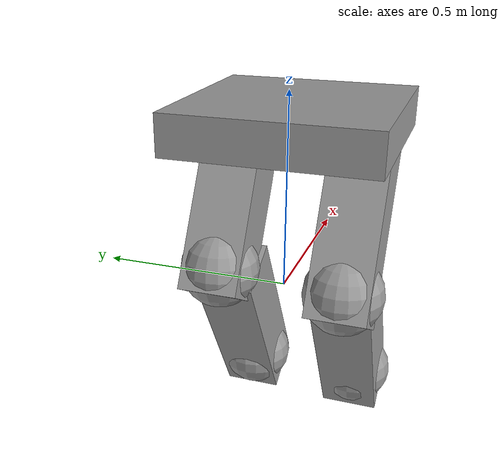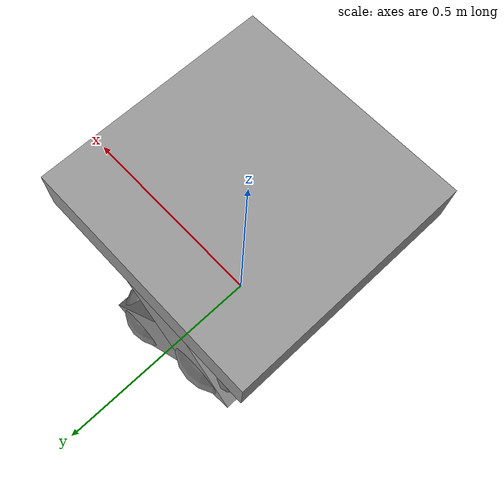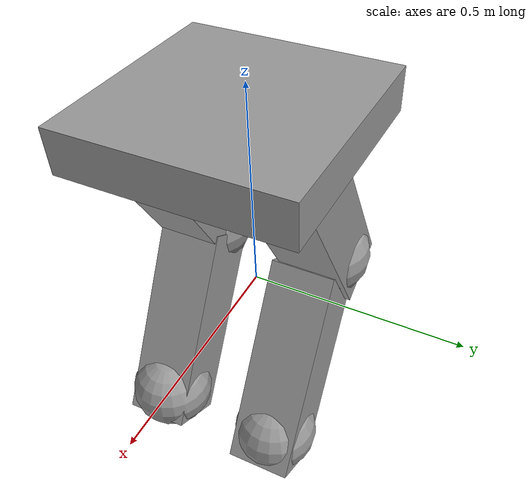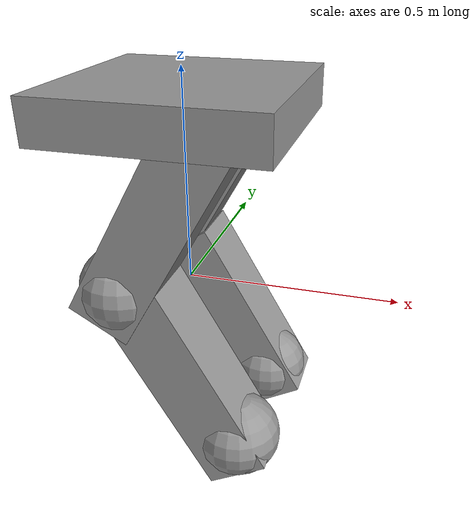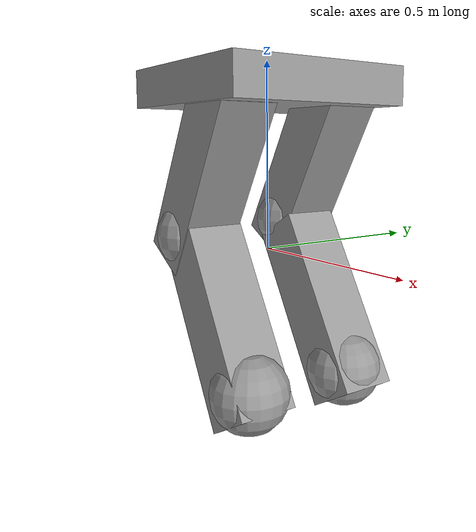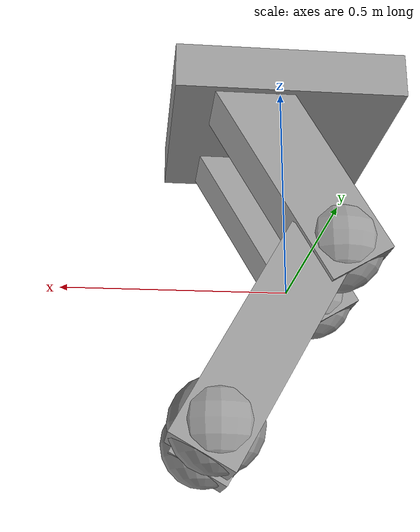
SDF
<?xml version='1.0'?>
<sdf version='1.7'>
  <model name='2LeggedBot'>
    <link name='link_0'>
      <inertial>
        <mass>1</mass>
        <inertia>
          <ixx>0.1</ixx>
          <ixy>0</ixy>
          <ixz>0</ixz>
          <iyy>0.1</iyy>
          <iyz>0</iyz>
          <izz>0.1</izz>
        </inertia>
        <pose>0 0 0 0 -0 0</pose>
      </inertial>
      <pose>0.169699 -0.170527 -0.315363 0 -0 0</pose>
      <gravity>1</gravity>
      <self_collide>0</self_collide>
      <kinematic>0</kinematic>
      <enable_wind>0</enable_wind>
      <visual name='visual'>
        <pose>0 0 0 0 -0 0</pose>
        <geometry>
          <sphere>
            <radius>0.1</radius>
          </sphere>
        </geometry>
        <material>
          <lighting>1</lighting>
          <script>
            <uri>file://media/materials/scripts/gazebo.material</uri>
            <name>Gazebo/Grey</name>
          </script>
          <shader type='pixel'>
            <normal_map>__default__</normal_map>
          </shader>
          <ambient>0.3 0.3 0.3 1</ambient>
          <diffuse>0.7 0.7 0.7 1</diffuse>
          <specular>0.01 0.01 0.01 1</specular>
          <emissive>0 0 0 1</emissive>
        </material>
        <transparency>0</transparency>
        <cast_shadows>1</cast_shadows>
      </visual>
      <visual name='ModelPreview_2::link_0::visual_1'>
        <pose>0 0 0 0 -0 0</pose>
        <geometry>
          <sphere>
            <radius>0.1</radius>
          </sphere>
        </geometry>
        <material>
          <lighting>1</lighting>
          <script>
            <uri>file://media/materials/scripts/gazebo.material</uri>
            <name>Gazebo/Grey</name>
          </script>
          <shader type='pixel'>
            <normal_map>__default__</normal_map>
          </shader>
          <ambient>0.3 0.3 0.3 1</ambient>
          <diffuse>0.7 0.7 0.7 1</diffuse>
          <specular>0.01 0.01 0.01 1</specular>
          <emissive>0 0 0 1</emissive>
        </material>
        <transparency>0</transparency>
        <cast_shadows>1</cast_shadows>
      </visual>
      <collision name='collision'>
        <laser_retro>0</laser_retro>
        <max_contacts>10</max_contacts>
        <pose>0 0 0 0 -0 0</pose>
        <geometry>
          <sphere>
            <radius>0.1</radius>
          </sphere>
        </geometry>
        <surface>
          <friction>
            <ode>
              <mu>1</mu>
              <mu2>1</mu2>
              <fdir1>0 0 0</fdir1>
              <slip1>0</slip1>
              <slip2>0</slip2>
            </ode>
            <torsional>
              <coefficient>1</coefficient>
              <patch_radius>0</patch_radius>
              <surface_radius>0</surface_radius>
              <use_patch_radius>1</use_patch_radius>
              <ode>
                <slip>0</slip>
              </ode>
            </torsional>
          </friction>
          <bounce>
            <restitution_coefficient>0</restitution_coefficient>
            <threshold>1e+06</threshold>
          </bounce>
          <contact>
            <collide_without_contact>0</collide_without_contact>
            <collide_without_contact_bitmask>1</collide_without_contact_bitmask>
            <collide_bitmask>1</collide_bitmask>
            <ode>
              <soft_cfm>0</soft_cfm>
              <soft_erp>0.2</soft_erp>
              <kp>1e+13</kp>
              <kd>1</kd>
              <max_vel>0.01</max_vel>
              <min_depth>0</min_depth>
            </ode>
            <bullet>
              <split_impulse>1</split_impulse>
              <split_impulse_penetration_threshold>-0.01</split_impulse_penetration_threshold>
              <soft_cfm>0</soft_cfm>
              <soft_erp>0.2</soft_erp>
              <kp>1e+13</kp>
              <kd>1</kd>
            </bullet>
          </contact>
        </surface>
      </collision>
    </link>
    <link name='link_0_clone'>
      <inertial>
        <mass>1</mass>
        <inertia>
          <ixx>0.1</ixx>
          <ixy>0</ixy>
          <ixz>0</ixz>
          <iyy>0.1</iyy>
          <iyz>0</iyz>
          <izz>0.1</izz>
        </inertia>
        <pose>0 0 0 0 -0 0</pose>
      </inertial>
      <pose>0.169699 0.129473 -0.315363 0 -0 0</pose>
      <gravity>1</gravity>
      <self_collide>0</self_collide>
      <kinematic>0</kinematic>
      <enable_wind>0</enable_wind>
      <visual name='visual'>
        <pose>0 0 0 0 -0 0</pose>
        <geometry>
          <sphere>
            <radius>0.1</radius>
          </sphere>
        </geometry>
        <material>
          <lighting>1</lighting>
          <script>
            <uri>file://media/materials/scripts/gazebo.material</uri>
            <name>Gazebo/Grey</name>
          </script>
          <shader type='pixel'>
            <normal_map>__default__</normal_map>
          </shader>
          <ambient>0.3 0.3 0.3 1</ambient>
          <diffuse>0.7 0.7 0.7 1</diffuse>
          <specular>0.01 0.01 0.01 1</specular>
          <emissive>0 0 0 1</emissive>
        </material>
        <transparency>0</transparency>
        <cast_shadows>1</cast_shadows>
      </visual>
      <visual name='visual_1'>
        <pose>0 0 0 0 -0 0</pose>
        <geometry>
          <sphere>
            <radius>0.1</radius>
          </sphere>
        </geometry>
        <material>
          <lighting>1</lighting>
          <script>
            <uri>file://media/materials/scripts/gazebo.material</uri>
            <name>Gazebo/Grey</name>
          </script>
          <shader type='pixel'>
            <normal_map>__default__</normal_map>
          </shader>
          <ambient>0.3 0.3 0.3 1</ambient>
          <diffuse>0.7 0.7 0.7 1</diffuse>
          <specular>0.01 0.01 0.01 1</specular>
          <emissive>0 0 0 1</emissive>
        </material>
        <transparency>0</transparency>
        <cast_shadows>1</cast_shadows>
      </visual>
      <collision name='collision'>
        <laser_retro>0</laser_retro>
        <max_contacts>10</max_contacts>
        <pose>0 0 0 0 -0 0</pose>
        <geometry>
          <sphere>
            <radius>0.1</radius>
          </sphere>
        </geometry>
        <surface>
          <friction>
            <ode>
              <mu>1</mu>
              <mu2>1</mu2>
              <fdir1>0 0 0</fdir1>
              <slip1>0</slip1>
              <slip2>0</slip2>
            </ode>
            <torsional>
              <coefficient>1</coefficient>
              <patch_radius>0</patch_radius>
              <surface_radius>0</surface_radius>
              <use_patch_radius>1</use_patch_radius>
              <ode>
                <slip>0</slip>
              </ode>
            </torsional>
          </friction>
          <bounce>
            <restitution_coefficient>0</restitution_coefficient>
            <threshold>1e+06</threshold>
          </bounce>
          <contact>
            <collide_without_contact>0</collide_without_contact>
            <collide_without_contact_bitmask>1</collide_without_contact_bitmask>
            <collide_bitmask>1</collide_bitmask>
            <ode>
              <soft_cfm>0</soft_cfm>
              <soft_erp>0.2</soft_erp>
              <kp>1e+13</kp>
              <kd>1</kd>
              <max_vel>0.01</max_vel>
              <min_depth>0</min_depth>
            </ode>
            <bullet>
              <split_impulse>1</split_impulse>
              <split_impulse_penetration_threshold>-0.01</split_impulse_penetration_threshold>
              <soft_cfm>0</soft_cfm>
              <soft_erp>0.2</soft_erp>
              <kp>1e+13</kp>
              <kd>1</kd>
            </bullet>
          </contact>
        </surface>
      </collision>
    </link>
    <link name='link_0_clone_0'>
      <inertial>
        <mass>1</mass>
        <inertia>
          <ixx>0.1</ixx>
          <ixy>0</ixy>
          <ixz>0</ixz>
          <iyy>0.1</iyy>
          <iyz>0</iyz>
          <izz>0.1</izz>
        </inertia>
        <pose>0 0 0 0 -0 0</pose>
      </inertial>
      <pose>-0.088021 0.142639 0.064349 0 -0 0</pose>
      <gravity>1</gravity>
      <self_collide>0</self_collide>
      <kinematic>0</kinematic>
      <enable_wind>0</enable_wind>
      <visual name='visual_1'>
        <pose>0 0 0 0 -0 0</pose>
        <geometry>
          <sphere>
            <radius>0.1</radius>
          </sphere>
        </geometry>
        <material>
          <lighting>1</lighting>
          <script>
            <uri>file://media/materials/scripts/gazebo.material</uri>
            <name>Gazebo/Grey</name>
          </script>
          <shader type='pixel'>
            <normal_map>__default__</normal_map>
          </shader>
          <ambient>0.3 0.3 0.3 1</ambient>
          <diffuse>0.7 0.7 0.7 1</diffuse>
          <specular>0.01 0.01 0.01 1</specular>
          <emissive>0 0 0 1</emissive>
        </material>
        <transparency>0</transparency>
        <cast_shadows>1</cast_shadows>
      </visual>
      <visual name='visual'>
        <pose>0 0 0 0 -0 0</pose>
        <geometry>
          <sphere>
            <radius>0.1</radius>
          </sphere>
        </geometry>
        <material>
          <lighting>1</lighting>
          <script>
            <uri>file://media/materials/scripts/gazebo.material</uri>
            <name>Gazebo/Grey</name>
          </script>
          <shader type='pixel'>
            <normal_map>__default__</normal_map>
          </shader>
          <ambient>0.3 0.3 0.3 1</ambient>
          <diffuse>0.7 0.7 0.7 1</diffuse>
          <specular>0.01 0.01 0.01 1</specular>
          <emissive>0 0 0 1</emissive>
        </material>
        <transparency>0</transparency>
        <cast_shadows>1</cast_shadows>
      </visual>
      <collision name='collision'>
        <laser_retro>0</laser_retro>
        <max_contacts>10</max_contacts>
        <pose>0 0 0 0 -0 0</pose>
        <geometry>
          <sphere>
            <radius>0.1</radius>
          </sphere>
        </geometry>
        <surface>
          <friction>
            <ode>
              <mu>1</mu>
              <mu2>1</mu2>
              <fdir1>0 0 0</fdir1>
              <slip1>0</slip1>
              <slip2>0</slip2>
            </ode>
            <torsional>
              <coefficient>1</coefficient>
              <patch_radius>0</patch_radius>
              <surface_radius>0</surface_radius>
              <use_patch_radius>1</use_patch_radius>
              <ode>
                <slip>0</slip>
              </ode>
            </torsional>
          </friction>
          <bounce>
            <restitution_coefficient>0</restitution_coefficient>
            <threshold>1e+06</threshold>
          </bounce>
          <contact>
            <collide_without_contact>0</collide_without_contact>
            <collide_without_contact_bitmask>1</collide_without_contact_bitmask>
            <collide_bitmask>1</collide_bitmask>
            <ode>
              <soft_cfm>0</soft_cfm>
              <soft_erp>0.2</soft_erp>
              <kp>1e+13</kp>
              <kd>1</kd>
              <max_vel>0.01</max_vel>
              <min_depth>0</min_depth>
            </ode>
            <bullet>
              <split_impulse>1</split_impulse>
              <split_impulse_penetration_threshold>-0.01</split_impulse_penetration_threshold>
              <soft_cfm>0</soft_cfm>
              <soft_erp>0.2</soft_erp>
              <kp>1e+13</kp>
              <kd>1</kd>
            </bullet>
          </contact>
        </surface>
      </collision>
    </link>
    <link name='link_0_clone_1'>
      <inertial>
        <mass>1</mass>
        <inertia>
          <ixx>0.1</ixx>
          <ixy>0</ixy>
          <ixz>0</ixz>
          <iyy>0.1</iyy>
          <iyz>0</iyz>
          <izz>0.1</izz>
        </inertia>
        <pose>0 0 0 0 -0 0</pose>
      </inertial>
      <pose>-0.092915 -0.172952 0.04398 0 -0 0</pose>
      <gravity>1</gravity>
      <self_collide>0</self_collide>
      <kinematic>0</kinematic>
      <enable_wind>0</enable_wind>
      <visual name='visual'>
        <pose>0 0 0 0 -0 0</pose>
        <geometry>
          <sphere>
            <radius>0.1</radius>
          </sphere>
        </geometry>
        <material>
          <lighting>1</lighting>
          <script>
            <uri>file://media/materials/scripts/gazebo.material</uri>
            <name>Gazebo/Grey</name>
          </script>
          <shader type='pixel'>
            <normal_map>__default__</normal_map>
          </shader>
          <ambient>0.3 0.3 0.3 1</ambient>
          <diffuse>0.7 0.7 0.7 1</diffuse>
          <specular>0.01 0.01 0.01 1</specular>
          <emissive>0 0 0 1</emissive>
        </material>
        <transparency>0</transparency>
        <cast_shadows>1</cast_shadows>
      </visual>
      <visual name='visual_1'>
        <pose>0 0 0 0 -0 0</pose>
        <geometry>
          <sphere>
            <radius>0.1</radius>
          </sphere>
        </geometry>
        <material>
          <lighting>1</lighting>
          <script>
            <uri>file://media/materials/scripts/gazebo.material</uri>
            <name>Gazebo/Grey</name>
          </script>
          <shader type='pixel'>
            <normal_map>__default__</normal_map>
          </shader>
          <ambient>0.3 0.3 0.3 1</ambient>
          <diffuse>0.7 0.7 0.7 1</diffuse>
          <specular>0.01 0.01 0.01 1</specular>
          <emissive>0 0 0 1</emissive>
        </material>
        <transparency>0</transparency>
        <cast_shadows>1</cast_shadows>
      </visual>
      <collision name='collision'>
        <laser_retro>0</laser_retro>
        <max_contacts>10</max_contacts>
        <pose>0 0 0 0 -0 0</pose>
        <geometry>
          <sphere>
            <radius>0.1</radius>
          </sphere>
        </geometry>
        <surface>
          <friction>
            <ode>
              <mu>1</mu>
              <mu2>1</mu2>
              <fdir1>0 0 0</fdir1>
              <slip1>0</slip1>
              <slip2>0</slip2>
            </ode>
            <torsional>
              <coefficient>1</coefficient>
              <patch_radius>0</patch_radius>
              <surface_radius>0</surface_radius>
              <use_patch_radius>1</use_patch_radius>
              <ode>
                <slip>0</slip>
              </ode>
            </torsional>
          </friction>
          <bounce>
            <restitution_coefficient>0</restitution_coefficient>
            <threshold>1e+06</threshold>
          </bounce>
          <contact>
            <collide_without_contact>0</collide_without_contact>
            <collide_without_contact_bitmask>1</collide_without_contact_bitmask>
            <collide_bitmask>1</collide_bitmask>
            <ode>
              <soft_cfm>0</soft_cfm>
              <soft_erp>0.2</soft_erp>
              <kp>1e+13</kp>
              <kd>1</kd>
              <max_vel>0.01</max_vel>
              <min_depth>0</min_depth>
            </ode>
            <bullet>
              <split_impulse>1</split_impulse>
              <split_impulse_penetration_threshold>-0.01</split_impulse_penetration_threshold>
              <soft_cfm>0</soft_cfm>
              <soft_erp>0.2</soft_erp>
              <kp>1e+13</kp>
              <kd>1</kd>
            </bullet>
          </contact>
        </surface>
      </collision>
    </link>
    <link name='link_2'>
      <inertial>
        <mass>1</mass>
        <inertia>
          <ixx>0.166667</ixx>
          <ixy>0</ixy>
          <ixz>0</ixz>
          <iyy>0.166667</iyy>
          <iyz>0</iyz>
          <izz>0.166667</izz>
        </inertia>
        <pose>0 0 0 0 -0 0</pose>
      </inertial>
      <pose>0.063484 -0.170527 -0.161345 0 -0.5234 0</pose>
      <gravity>1</gravity>
      <self_collide>0</self_collide>
      <kinematic>0</kinematic>
      <enable_wind>0</enable_wind>
      <visual name='visual'>
        <pose>0 0 0 0 -0 0</pose>
        <geometry>
          <box>
            <size>0.15 0.15 0.5</size>
          </box>
        </geometry>
        <material>
          <lighting>1</lighting>
          <script>
            <uri>file://media/materials/scripts/gazebo.material</uri>
            <name>Gazebo/Grey</name>
          </script>
          <shader type='pixel'>
            <normal_map>__default__</normal_map>
          </shader>
          <ambient>0.3 0.3 0.3 1</ambient>
          <diffuse>0.7 0.7 0.7 1</diffuse>
          <specular>0.01 0.01 0.01 1</specular>
          <emissive>0 0 0 1</emissive>
        </material>
        <transparency>0</transparency>
        <cast_shadows>1</cast_shadows>
      </visual>
      <collision name='collision'>
        <laser_retro>0</laser_retro>
        <max_contacts>10</max_contacts>
        <pose>0 0 0 0 -0 0</pose>
        <geometry>
          <box>
            <size>0.15 0.15 0.5</size>
          </box>
        </geometry>
        <surface>
          <friction>
            <ode>
              <mu>1</mu>
              <mu2>1</mu2>
              <fdir1>0 0 0</fdir1>
              <slip1>0</slip1>
              <slip2>0</slip2>
            </ode>
            <torsional>
              <coefficient>1</coefficient>
              <patch_radius>0</patch_radius>
              <surface_radius>0</surface_radius>
              <use_patch_radius>1</use_patch_radius>
              <ode>
                <slip>0</slip>
              </ode>
            </torsional>
          </friction>
          <bounce>
            <restitution_coefficient>0</restitution_coefficient>
            <threshold>1e+06</threshold>
          </bounce>
          <contact>
            <collide_without_contact>0</collide_without_contact>
            <collide_without_contact_bitmask>1</collide_without_contact_bitmask>
            <collide_bitmask>1</collide_bitmask>
            <ode>
              <soft_cfm>0</soft_cfm>
              <soft_erp>0.2</soft_erp>
              <kp>1e+13</kp>
              <kd>1</kd>
              <max_vel>0.01</max_vel>
              <min_depth>0</min_depth>
            </ode>
            <bullet>
              <split_impulse>1</split_impulse>
              <split_impulse_penetration_threshold>-0.01</split_impulse_penetration_threshold>
              <soft_cfm>0</soft_cfm>
              <soft_erp>0.2</soft_erp>
              <kp>1e+13</kp>
              <kd>1</kd>
            </bullet>
          </contact>
        </surface>
      </collision>
    </link>
    <link name='link_2_clone'>
      <inertial>
        <mass>1</mass>
        <inertia>
          <ixx>0.166667</ixx>
          <ixy>0</ixy>
          <ixz>0</ixz>
          <iyy>0.166667</iyy>
          <iyz>0</iyz>
          <izz>0.166667</izz>
        </inertia>
        <pose>0 0 0 0 -0 0</pose>
      </inertial>
      <pose>0.001286 0.142639 0.21857 0 0.52 0</pose>
      <gravity>1</gravity>
      <self_collide>0</self_collide>
      <kinematic>0</kinematic>
      <enable_wind>0</enable_wind>
      <visual name='visual'>
        <pose>0 0 0 0 -0 0</pose>
        <geometry>
          <box>
            <size>0.15 0.15 0.5</size>
          </box>
        </geometry>
        <material>
          <lighting>1</lighting>
          <script>
            <uri>file://media/materials/scripts/gazebo.material</uri>
            <name>Gazebo/Grey</name>
          </script>
          <shader type='pixel'>
            <normal_map>__default__</normal_map>
          </shader>
          <ambient>0.3 0.3 0.3 1</ambient>
          <diffuse>0.7 0.7 0.7 1</diffuse>
          <specular>0.01 0.01 0.01 1</specular>
          <emissive>0 0 0 1</emissive>
        </material>
        <transparency>0</transparency>
        <cast_shadows>1</cast_shadows>
      </visual>
      <collision name='collision'>
        <laser_retro>0</laser_retro>
        <max_contacts>10</max_contacts>
        <pose>0 0 0 0 -0 0</pose>
        <geometry>
          <box>
            <size>0.15 0.15 0.5</size>
          </box>
        </geometry>
        <surface>
          <friction>
            <ode>
              <mu>1</mu>
              <mu2>1</mu2>
              <fdir1>0 0 0</fdir1>
              <slip1>0</slip1>
              <slip2>0</slip2>
            </ode>
            <torsional>
              <coefficient>1</coefficient>
              <patch_radius>0</patch_radius>
              <surface_radius>0</surface_radius>
              <use_patch_radius>1</use_patch_radius>
              <ode>
                <slip>0</slip>
              </ode>
            </torsional>
          </friction>
          <bounce>
            <restitution_coefficient>0</restitution_coefficient>
            <threshold>1e+06</threshold>
          </bounce>
          <contact>
            <collide_without_contact>0</collide_without_contact>
            <collide_without_contact_bitmask>1</collide_without_contact_bitmask>
            <collide_bitmask>1</collide_bitmask>
            <ode>
              <soft_cfm>0</soft_cfm>
              <soft_erp>0.2</soft_erp>
              <kp>1e+13</kp>
              <kd>1</kd>
              <max_vel>0.01</max_vel>
              <min_depth>0</min_depth>
            </ode>
            <bullet>
              <split_impulse>1</split_impulse>
              <split_impulse_penetration_threshold>-0.01</split_impulse_penetration_threshold>
              <soft_cfm>0</soft_cfm>
              <soft_erp>0.2</soft_erp>
              <kp>1e+13</kp>
              <kd>1</kd>
            </bullet>
          </contact>
        </surface>
      </collision>
    </link>
    <link name='link_2_clone_0'>
      <inertial>
        <mass>1</mass>
        <inertia>
          <ixx>0.166667</ixx>
          <ixy>0</ixy>
          <ixz>0</ixz>
          <iyy>0.166667</iyy>
          <iyz>0</iyz>
          <izz>0.166667</izz>
        </inertia>
        <pose>0 0 0 0 -0 0</pose>
      </inertial>
      <pose>0.079782 0.129473 -0.161345 0 -0.5234 0</pose>
      <gravity>1</gravity>
      <self_collide>0</self_collide>
      <kinematic>0</kinematic>
      <enable_wind>0</enable_wind>
      <visual name='visual'>
        <pose>0 0 0 0 -0 0</pose>
        <geometry>
          <box>
            <size>0.15 0.15 0.5</size>
          </box>
        </geometry>
        <material>
          <lighting>1</lighting>
          <script>
            <uri>file://media/materials/scripts/gazebo.material</uri>
            <name>Gazebo/Grey</name>
          </script>
          <shader type='pixel'>
            <normal_map>__default__</normal_map>
          </shader>
          <ambient>0.3 0.3 0.3 1</ambient>
          <diffuse>0.7 0.7 0.7 1</diffuse>
          <specular>0.01 0.01 0.01 1</specular>
          <emissive>0 0 0 1</emissive>
        </material>
        <transparency>0</transparency>
        <cast_shadows>1</cast_shadows>
      </visual>
      <collision name='collision'>
        <laser_retro>0</laser_retro>
        <max_contacts>10</max_contacts>
        <pose>0 0 0 0 -0 0</pose>
        <geometry>
          <box>
            <size>0.15 0.15 0.5</size>
          </box>
        </geometry>
        <surface>
          <friction>
            <ode>
              <mu>1</mu>
              <mu2>1</mu2>
              <fdir1>0 0 0</fdir1>
              <slip1>0</slip1>
              <slip2>0</slip2>
            </ode>
            <torsional>
              <coefficient>1</coefficient>
              <patch_radius>0</patch_radius>
              <surface_radius>0</surface_radius>
              <use_patch_radius>1</use_patch_radius>
              <ode>
                <slip>0</slip>
              </ode>
            </torsional>
          </friction>
          <bounce>
            <restitution_coefficient>0</restitution_coefficient>
            <threshold>1e+06</threshold>
          </bounce>
          <contact>
            <collide_without_contact>0</collide_without_contact>
            <collide_without_contact_bitmask>1</collide_without_contact_bitmask>
            <collide_bitmask>1</collide_bitmask>
            <ode>
              <soft_cfm>0</soft_cfm>
              <soft_erp>0.2</soft_erp>
              <kp>1e+13</kp>
              <kd>1</kd>
              <max_vel>0.01</max_vel>
              <min_depth>0</min_depth>
            </ode>
            <bullet>
              <split_impulse>1</split_impulse>
              <split_impulse_penetration_threshold>-0.01</split_impulse_penetration_threshold>
              <soft_cfm>0</soft_cfm>
              <soft_erp>0.2</soft_erp>
              <kp>1e+13</kp>
              <kd>1</kd>
            </bullet>
          </contact>
        </surface>
      </collision>
    </link>
    <link name='link_2_clone_clone'>
      <inertial>
        <mass>1</mass>
        <inertia>
          <ixx>0.166667</ixx>
          <ixy>0</ixy>
          <ixz>0</ixz>
          <iyy>0.166667</iyy>
          <iyz>0</iyz>
          <izz>0.166667</izz>
        </inertia>
        <pose>0 0 0 0 -0 0</pose>
      </inertial>
      <pose>-0.003609 -0.172952 0.1982 0 0.52 0</pose>
      <gravity>1</gravity>
      <self_collide>0</self_collide>
      <kinematic>0</kinematic>
      <enable_wind>0</enable_wind>
      <visual name='visual'>
        <pose>0 0 0 0 -0 0</pose>
        <geometry>
          <box>
            <size>0.15 0.15 0.5</size>
          </box>
        </geometry>
        <material>
          <lighting>1</lighting>
          <script>
            <uri>file://media/materials/scripts/gazebo.material</uri>
            <name>Gazebo/Grey</name>
          </script>
          <shader type='pixel'>
            <normal_map>__default__</normal_map>
          </shader>
          <ambient>0.3 0.3 0.3 1</ambient>
          <diffuse>0.7 0.7 0.7 1</diffuse>
          <specular>0.01 0.01 0.01 1</specular>
          <emissive>0 0 0 1</emissive>
        </material>
        <transparency>0</transparency>
        <cast_shadows>1</cast_shadows>
      </visual>
      <collision name='collision'>
        <laser_retro>0</laser_retro>
        <max_contacts>10</max_contacts>
        <pose>0 0 0 0 -0 0</pose>
        <geometry>
          <box>
            <size>0.15 0.15 0.5</size>
          </box>
        </geometry>
        <surface>
          <friction>
            <ode>
              <mu>1</mu>
              <mu2>1</mu2>
              <fdir1>0 0 0</fdir1>
              <slip1>0</slip1>
              <slip2>0</slip2>
            </ode>
            <torsional>
              <coefficient>1</coefficient>
              <patch_radius>0</patch_radius>
              <surface_radius>0</surface_radius>
              <use_patch_radius>1</use_patch_radius>
              <ode>
                <slip>0</slip>
              </ode>
            </torsional>
          </friction>
          <bounce>
            <restitution_coefficient>0</restitution_coefficient>
            <threshold>1e+06</threshold>
          </bounce>
          <contact>
            <collide_without_contact>0</collide_without_contact>
            <collide_without_contact_bitmask>1</collide_without_contact_bitmask>
            <collide_bitmask>1</collide_bitmask>
            <ode>
              <soft_cfm>0</soft_cfm>
              <soft_erp>0.2</soft_erp>
              <kp>1e+13</kp>
              <kd>1</kd>
              <max_vel>0.01</max_vel>
              <min_depth>0</min_depth>
            </ode>
            <bullet>
              <split_impulse>1</split_impulse>
              <split_impulse_penetration_threshold>-0.01</split_impulse_penetration_threshold>
              <soft_cfm>0</soft_cfm>
              <soft_erp>0.2</soft_erp>
              <kp>1e+13</kp>
              <kd>1</kd>
            </bullet>
          </contact>
        </surface>
      </collision>
    </link>
    <link name='link_3'>
      <inertial>
        <mass>1</mass>
        <inertia>
          <ixx>0.166667</ixx>
          <ixy>0</ixy>
          <ixz>0</ixz>
          <iyy>0.166667</iyy>
          <iyz>0</iyz>
          <izz>0.166667</izz>
        </inertia>
        <pose>0 0 0 0 -0 0</pose>
      </inertial>
      <pose>0.014885 -0.015108 0.428317 0 -0 0</pose>
      <gravity>1</gravity>
      <self_collide>0</self_collide>
      <kinematic>0</kinematic>
      <enable_wind>0</enable_wind>
      <visual name='visual'>
        <pose>0 0 0 0 -0 0</pose>
        <geometry>
          <box>
            <size>0.5 0.5 0.1</size>
          </box>
        </geometry>
        <material>
          <lighting>1</lighting>
          <script>
            <uri>file://media/materials/scripts/gazebo.material</uri>
            <name>Gazebo/Grey</name>
          </script>
          <shader type='pixel'>
            <normal_map>__default__</normal_map>
          </shader>
          <ambient>0.3 0.3 0.3 1</ambient>
          <diffuse>0.7 0.7 0.7 1</diffuse>
          <specular>0.01 0.01 0.01 1</specular>
          <emissive>0 0 0 1</emissive>
        </material>
        <transparency>0</transparency>
        <cast_shadows>1</cast_shadows>
      </visual>
      <collision name='collision'>
        <laser_retro>0</laser_retro>
        <max_contacts>10</max_contacts>
        <pose>0 0 0 0 -0 0</pose>
        <geometry>
          <box>
            <size>0.5 0.5 0.1</size>
          </box>
        </geometry>
        <surface>
          <friction>
            <ode>
              <mu>1</mu>
              <mu2>1</mu2>
              <fdir1>0 0 0</fdir1>
              <slip1>0</slip1>
              <slip2>0</slip2>
            </ode>
            <torsional>
              <coefficient>1</coefficient>
              <patch_radius>0</patch_radius>
              <surface_radius>0</surface_radius>
              <use_patch_radius>1</use_patch_radius>
              <ode>
                <slip>0</slip>
              </ode>
            </torsional>
          </friction>
          <bounce>
            <restitution_coefficient>0</restitution_coefficient>
            <threshold>1e+06</threshold>
          </bounce>
          <contact>
            <collide_without_contact>0</collide_without_contact>
            <collide_without_contact_bitmask>1</collide_without_contact_bitmask>
            <collide_bitmask>1</collide_bitmask>
            <ode>
              <soft_cfm>0</soft_cfm>
              <soft_erp>0.2</soft_erp>
              <kp>1e+13</kp>
              <kd>1</kd>
              <max_vel>0.01</max_vel>
              <min_depth>0</min_depth>
            </ode>
            <bullet>
              <split_impulse>1</split_impulse>
              <split_impulse_penetration_threshold>-0.01</split_impulse_penetration_threshold>
              <soft_cfm>0</soft_cfm>
              <soft_erp>0.2</soft_erp>
              <kp>1e+13</kp>
              <kd>1</kd>
            </bullet>
          </contact>
        </surface>
      </collision>
    </link>
    <joint name='link_0_clone_0_JOINT_4' type='revolute'>
      <parent>link_0_clone_0</parent>
      <child>link_2_clone</child>
      <pose>0 0 0 0 -0 0</pose>
      <axis>
        <xyz>1 0 0</xyz>
        <limit>
          <lower>-1.79769e+308</lower>
          <upper>1.79769e+308</upper>
          <effort>-1</effort>
          <velocity>-1</velocity>
        </limit>
        <dynamics>
          <spring_reference>0</spring_reference>
          <spring_stiffness>0</spring_stiffness>
          <damping>0</damping>
          <friction>0</friction>
        </dynamics>
      </axis>
      <physics>
        <ode>
          <limit>
            <cfm>0</cfm>
            <erp>0.2</erp>
          </limit>
          <suspension>
            <cfm>0</cfm>
            <erp>0.2</erp>
          </suspension>
        </ode>
      </physics>
    </joint>
    <joint name='link_0_clone_1_JOINT_5' type='revolute'>
      <parent>link_0_clone_1</parent>
      <child>link_2_clone_clone</child>
      <pose>0 0 0 0 -0 0</pose>
      <axis>
        <xyz>1 0 0</xyz>
        <limit>
          <lower>-1.79769e+308</lower>
          <upper>1.79769e+308</upper>
          <effort>-1</effort>
          <velocity>-1</velocity>
        </limit>
        <dynamics>
          <spring_reference>0</spring_reference>
          <spring_stiffness>0</spring_stiffness>
          <damping>0</damping>
          <friction>0</friction>
        </dynamics>
      </axis>
      <physics>
        <ode>
          <limit>
            <cfm>0</cfm>
            <erp>0.2</erp>
          </limit>
          <suspension>
            <cfm>0</cfm>
            <erp>0.2</erp>
          </suspension>
        </ode>
      </physics>
    </joint>
    <joint name='link_0_clone_JOINT_1' type='fixed'>
      <parent>link_0_clone</parent>
      <child>link_2_clone_0</child>
      <pose>0 0 0 0 -0 0</pose>
      <physics>
        <ode>
          <limit>
            <cfm>0</cfm>
            <erp>0.2</erp>
          </limit>
          <suspension>
            <cfm>0</cfm>
            <erp>0.2</erp>
          </suspension>
        </ode>
      </physics>
    </joint>
    <joint name='link_2_JOINT_0' type='fixed'>
      <parent>link_0</parent>
      <child>link_2</child>
      <pose>0 0 0 0 -0 0</pose>
      <physics>
        <ode>
          <limit>
            <cfm>0</cfm>
            <erp>0.2</erp>
          </limit>
          <suspension>
            <cfm>0</cfm>
            <erp>0.2</erp>
          </suspension>
        </ode>
      </physics>
    </joint>
    <joint name='link_2_JOINT_2' type='revolute'>
      <parent>link_2</parent>
      <child>link_0_clone_1</child>
      <pose>0 0 0 0 -0 0</pose>
      <axis>
        <xyz>1 0 0</xyz>
        <limit>
          <lower>-1.79769e+308</lower>
          <upper>1.79769e+308</upper>
          <effort>-1</effort>
          <velocity>-1</velocity>
        </limit>
        <dynamics>
          <spring_reference>0</spring_reference>
          <spring_stiffness>0</spring_stiffness>
          <damping>0</damping>
          <friction>0</friction>
        </dynamics>
      </axis>
      <physics>
        <ode>
          <limit>
            <cfm>0</cfm>
            <erp>0.2</erp>
          </limit>
          <suspension>
            <cfm>0</cfm>
            <erp>0.2</erp>
          </suspension>
        </ode>
      </physics>
    </joint>
    <joint name='link_2_clone_0_JOINT_3' type='fixed'>
      <parent>link_2_clone_0</parent>
      <child>link_0_clone_0</child>
      <pose>0 0 0 0 -0 0</pose>
      <physics>
        <ode>
          <limit>
            <cfm>0</cfm>
            <erp>0.2</erp>
          </limit>
          <suspension>
            <cfm>0</cfm>
            <erp>0.2</erp>
          </suspension>
        </ode>
      </physics>
    </joint>
    <joint name='link_2_clone_JOINT_8' type='fixed'>
      <parent>link_2_clone</parent>
      <child>link_3</child>
      <pose>0 0 0 0 -0 0</pose>
      <physics>
        <ode>
          <limit>
            <cfm>0</cfm>
            <erp>0.2</erp>
          </limit>
          <suspension>
            <cfm>0</cfm>
            <erp>0.2</erp>
          </suspension>
        </ode>
      </physics>
    </joint>
    <joint name='link_3_JOINT_7' type='fixed'>
      <parent>link_3</parent>
      <child>link_2_clone_clone</child>
      <pose>0 0 0 0 -0 0</pose>
      <physics>
        <ode>
          <limit>
            <cfm>0</cfm>
            <erp>0.2</erp>
          </limit>
          <suspension>
            <cfm>0</cfm>
            <erp>0.2</erp>
          </suspension>
        </ode>
      </physics>
    </joint>
    <static>1</static>
    <allow_auto_disable>1</allow_auto_disable>
  </model>
</sdf>
